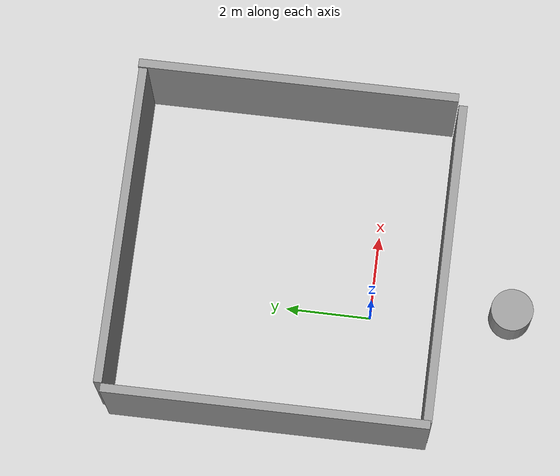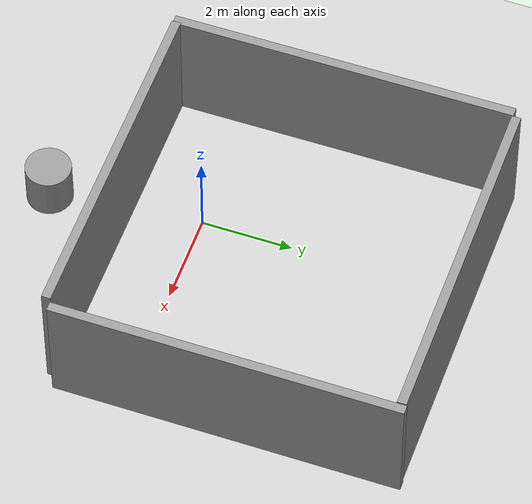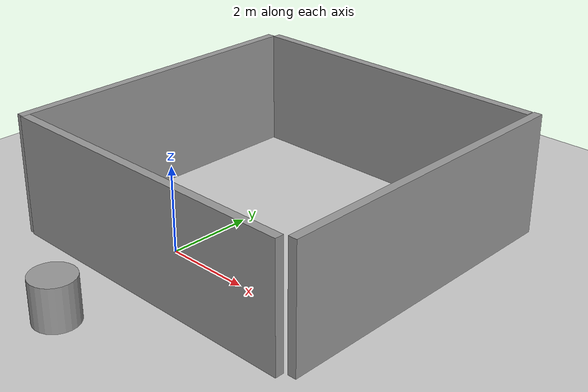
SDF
<sdf version="1.6">
 <world name="default">
  <light name="sun" type="directional">
   <pose>0 0 10 0 -0 0</pose>
   <diffuse>0.8 0.8 0.8 1</diffuse>
   <specular>0.1 0.1 0.1 1</specular>
   <attenuation>
    <range>1000</range>
    <constant>0.9</constant>
    <linear>0.01</linear>
    <quadratic>0.001</quadratic>
   </attenuation>
   <direction>-0.5 0.5 -1</direction>
  </light>
  <model name="ground_plane">
   <static>1</static>
   <link name="link">
    <collision name="collision">
     <geometry><plane><normal>0 0 1</normal><size>100 100</size></plane></geometry>
     <surface><friction><ode><mu>100</mu><mu2>50</mu2></ode></friction></surface>
    </collision>
    <visual name="visual">
     <cast_shadows>0</cast_shadows>
     <geometry><plane><normal>0 0 1</normal><size>100 100</size></plane></geometry>
     <material>
      <script><uri>file://media/materials/scripts/gazebo.material</uri><name>Gazebo/Grey</name></script>
     </material>
    </visual>
   </link>
  </model>
  <gravity>0 0 -9.8</gravity>
  <magnetic_field>6e-06 2.3e-05 -4.2e-05</magnetic_field>
  <atmosphere type="adiabatic"/>
  <physics name="default_physics" default="0" type="ode">
   <max_step_size>0.001</max_step_size>
   <real_time_factor>1</real_time_factor>
   <real_time_update_rate>1000</real_time_update_rate>
  </physics>
  <scene><ambient>0.4 0.4 0.4 1</ambient><background>0.7 0.7 0.7 1</background><shadows>1</shadows></scene>
  <spherical_coordinates>
   <surface_model>EARTH_WGS84</surface_model>
   <latitude_deg>0</latitude_deg>
   <longitude_deg>0</longitude_deg>
   <elevation>0</elevation>
   <heading_deg>0</heading_deg>
  </spherical_coordinates>
  <model name="unit_cylinder_0">
   <pose>0.401359 -3.30217 0.499994 -4e-06 -3e-06 -0</pose>
   <link name="link">
    <inertial>
     <mass>1</mass>
     <inertia><ixx>0.145833</ixx><ixy>0</ixy><ixz>0</ixz><iyy>0.145833</iyy><iyz>0</iyz><izz>0.125</izz></inertia>
    </inertial>
    <collision name="collision">
     <geometry><cylinder><radius>0.5</radius><length>1</length></cylinder></geometry>
    </collision>
    <visual name="visual">
     <geometry><cylinder><radius>0.5</radius><length>1</length></cylinder></geometry>
     <material>
      <script><name>Gazebo/Grey</name><uri>file://media/materials/scripts/gazebo.material</uri></script>
     </material>
    </visual>
   </link>
  </model>
  <model name="grey_wall">
   <static>1</static>
   <link name="link">
    <pose>0 0 1.4 0 -0 0</pose>
    <collision name="collision"><geometry><box><size>7.5 0.2 2.8</size></box></geometry></collision>
    <visual name="visual">
     <cast_shadows>0</cast_shadows>
     <geometry><box><size>7.5 0.2 2.8</size></box></geometry>
     <material>
      <script>
       <uri>model://grey_wall/materials/scripts</uri>
       <uri>model://grey_wall/materials/textures</uri>
       <name>vrc/grey_wall</name>
      </script>
     </material>
    </visual>
   </link>
   <pose>0.935835 5.91722 0 0 -0 0</pose>
  </model>
  <model name="grey_wall_1">
   <static>1</static>
   <link name="link">
    <pose>0 0 1.4 0 -0 0</pose>
    <collision name="collision"><geometry><box><size>7.5 0.2 2.8</size></box></geometry></collision>
    <visual name="visual">
     <cast_shadows>0</cast_shadows>
     <geometry><box><size>7.5 0.2 2.8</size></box></geometry>
     <material>
      <script>
       <uri>model://grey_wall/materials/scripts</uri>
       <uri>model://grey_wall/materials/textures</uri>
       <name>vrc/grey_wall</name>
      </script>
     </material>
    </visual>
   </link>
   <pose>4.82792 2.28929 0 0 -0 1.57679</pose>
  </model>
  <model name="grey_wall_2">
   <static>1</static>
   <link name="link">
    <pose>0 0 1.4 0 -0 0</pose>
    <collision name="collision"><geometry><box><size>7.5 0.2 2.8</size></box></geometry></collision>
    <visual name="visual">
     <cast_shadows>0</cast_shadows>
     <geometry><box><size>7.5 0.2 2.8</size></box></geometry>
     <material>
      <script>
       <uri>model://grey_wall/materials/scripts</uri>
       <uri>model://grey_wall/materials/textures</uri>
       <name>vrc/grey_wall</name>
      </script>
     </material>
    </visual>
   </link>
   <pose>0.921409 -1.58376 0 0 -0 0</pose>
  </model>
  <model name="grey_wall_1_clone">
   <static>1</static>
   <link name="link">
    <pose>0 0 1.4 0 -0 0</pose>
    <collision name="collision"><geometry><box><size>7.5 0.2 2.8</size></box></geometry></collision>
    <visual name="visual">
     <cast_shadows>0</cast_shadows>
     <geometry><box><size>7.5 0.2 2.8</size></box></geometry>
     <material>
      <script>
       <uri>model://grey_wall/materials/scripts</uri>
       <uri>model://grey_wall/materials/textures</uri>
       <name>vrc/grey_wall</name>
      </script>
     </material>
    </visual>
   </link>
   <pose>-2.89988 2.09525 0 0 -0 1.57679</pose>
  </model>
 </world>
</sdf>
